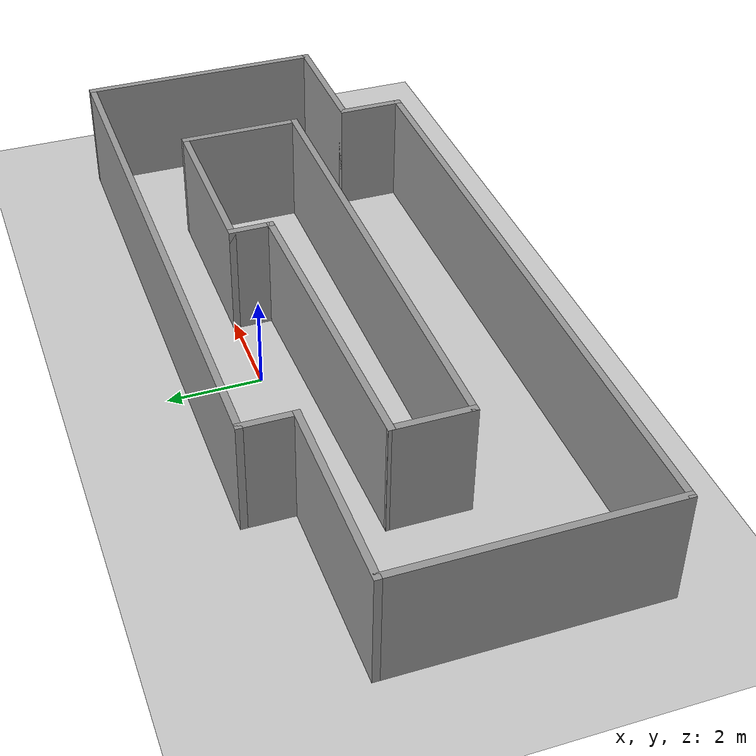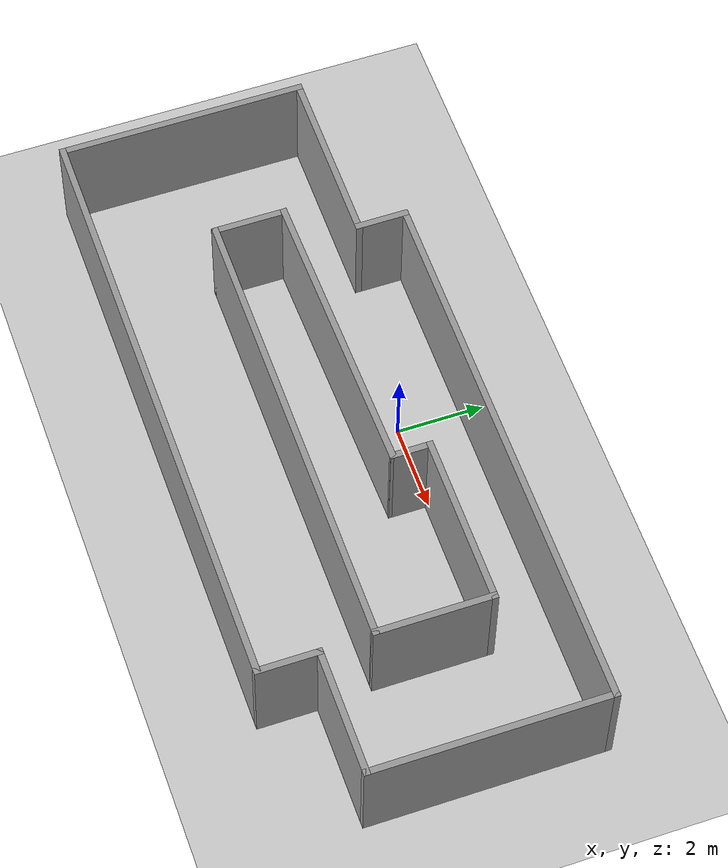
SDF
<sdf version="1.6">
 <world name="default">
  <light name="sun" type="directional">
   <pose>0 0 10 0 -0 0</pose>
   <diffuse>0.8 0.8 0.8 1</diffuse>
   <specular>0.2 0.2 0.2 1</specular>
   <attenuation>
    <range>1000</range>
    <constant>0.9</constant>
    <linear>0.01</linear>
    <quadratic>0.001</quadratic>
   </attenuation>
   <direction>-0.5 0.1 -0.9</direction>
  </light>
  <model name="ground_plane">
   <static>1</static>
   <link name="link">
    <collision name="collision">
     <geometry><plane><normal>0 0 1</normal><size>100 100</size></plane></geometry>
     <surface><friction><ode><mu>100</mu><mu2>50</mu2></ode></friction></surface>
    </collision>
    <visual name="visual">
     <cast_shadows>0</cast_shadows>
     <geometry><plane><normal>0 0 1</normal><size>100 100</size></plane></geometry>
     <material>
      <script><uri>file://media/materials/scripts/gazebo.material</uri><name>Gazebo/Grey</name></script>
     </material>
    </visual>
   </link>
  </model>
  <gravity>0 0 -9.8</gravity>
  <magnetic_field>6e-06 2.3e-05 -4.2e-05</magnetic_field>
  <atmosphere type="adiabatic"/>
  <physics name="default_physics" default="0" type="ode">
   <max_step_size>0.001</max_step_size>
   <real_time_factor>1</real_time_factor>
   <real_time_update_rate>1000</real_time_update_rate>
  </physics>
  <scene><ambient>0.4 0.4 0.4 1</ambient><background>0.7 0.7 0.7 1</background><shadows>1</shadows></scene>
  <audio><device>default</device></audio>
  <spherical_coordinates>
   <surface_model>EARTH_WGS84</surface_model>
   <latitude_deg>0</latitude_deg>
   <longitude_deg>0</longitude_deg>
   <elevation>0</elevation>
   <heading_deg>0</heading_deg>
  </spherical_coordinates>
  <model name="c9room">
   <pose>0.35 -1.8341 0 0 -0 0</pose>
   <link name="Wall_0">
    <collision name="Wall_0_Collision">
     <geometry><box><size>5.75 0.15 2.5</size></box></geometry>
     <pose>0 0 1.25 0 -0 0</pose>
    </collision>
    <visual name="Wall_0_Visual">
     <pose>0 0 1.25 0 -0 0</pose>
     <geometry><box><size>5.75 0.15 2.5</size></box></geometry>
     <material>
      <script><uri>file://media/materials/scripts/gazebo.material</uri><name>Gazebo/Grey</name></script>
      <ambient>1 1 1 1</ambient>
     </material>
     <meta><layer>0</layer></meta>
    </visual>
    <pose>-8.35 -0.55 0 0 -0 -1.5708</pose>
   </link>
   <link name="Wall_1">
    <collision name="Wall_1_Collision">
     <geometry><box><size>14 0.15 2.5</size></box></geometry>
     <pose>0 0 1.25 0 -0 0</pose>
    </collision>
    <visual name="Wall_1_Visual">
     <pose>0 0 1.25 0 -0 0</pose>
     <geometry><box><size>14 0.15 2.5</size></box></geometry>
     <material>
      <script><uri>file://media/materials/scripts/gazebo.material</uri><name>Gazebo/Grey</name></script>
      <ambient>1 1 1 1</ambient>
     </material>
     <meta><layer>0</layer></meta>
    </visual>
    <pose>-1.425 -3.35 0 0 -0 0</pose>
   </link>
   <link name="Wall_10">
    <collision name="Wall_10_Collision">
     <geometry><box><size>10.75 0.15 2.5</size></box></geometry>
     <pose>0 0 1.25 0 -0 0</pose>
    </collision>
    <visual name="Wall_10_Visual">
     <pose>0 0 1.25 0 -0 0</pose>
     <geometry><box><size>10.75 0.15 2.5</size></box></geometry>
     <material>
      <script><uri>file://media/materials/scripts/gazebo.material</uri><name>Gazebo/Grey</name></script>
      <ambient>1 1 1 1</ambient>
     </material>
     <meta><layer>0</layer></meta>
    </visual>
    <pose>0.14 -0.78 0 0 -0 0</pose>
   </link>
   <link name="Wall_11">
    <collision name="Wall_11_Collision">
     <geometry><box><size>2.75 0.15 2.5</size></box></geometry>
     <pose>0 0 1.25 0 -0 0</pose>
    </collision>
    <visual name="Wall_11_Visual">
     <pose>0 0 1.25 0 -0 0</pose>
     <geometry><box><size>2.75 0.15 2.5</size></box></geometry>
     <material>
      <script><uri>file://media/materials/scripts/gazebo.material</uri><name>Gazebo/Grey</name></script>
      <ambient>1 1 1 1</ambient>
     </material>
     <meta><layer>0</layer></meta>
    </visual>
    <pose>5.44 0.52 0 0 -0 1.5708</pose>
   </link>
   <link name="Wall_12">
    <collision name="Wall_12_Collision">
     <geometry><box><size>4 0.15 2.5</size></box></geometry>
     <pose>0 0 1.25 0 -0 0</pose>
    </collision>
    <visual name="Wall_12_Visual">
     <pose>0 0 1.25 0 -0 0</pose>
     <geometry><box><size>4 0.15 2.5</size></box></geometry>
     <material>
      <script><uri>file://media/materials/scripts/gazebo.material</uri><name>Gazebo/Grey</name></script>
      <ambient>1 1 1 1</ambient>
     </material>
     <meta><layer>0</layer></meta>
    </visual>
    <pose>3.515 1.82 0 0 -0 3.14159</pose>
   </link>
   <link name="Wall_13">
    <collision name="Wall_13_Collision">
     <geometry><box><size>1 0.15 2.5</size></box></geometry>
     <pose>0 0 1.25 0 -0 0</pose>
    </collision>
    <visual name="Wall_13_Visual">
     <pose>0 0 1.25 0 -0 0</pose>
     <geometry><box><size>1 0.15 2.5</size></box></geometry>
     <material>
      <script><uri>file://media/materials/scripts/gazebo.material</uri><name>Gazebo/Grey</name></script>
      <ambient>1 1 1 1</ambient>
     </material>
     <meta><layer>0</layer></meta>
    </visual>
    <pose>1.59 1.395 0 0 -0 -1.5708</pose>
   </link>
   <link name="Wall_14">
    <collision name="Wall_14_Collision">
     <geometry><box><size>6.90167 0.15 2.5</size></box></geometry>
     <pose>0 0 1.25 0 -0 0</pose>
    </collision>
    <visual name="Wall_14_Visual">
     <pose>0 0 1.25 0 -0 0</pose>
     <geometry><box><size>6.90167 0.15 2.5</size></box></geometry>
     <material>
      <script><uri>file://media/materials/scripts/gazebo.material</uri><name>Gazebo/Grey</name></script>
      <ambient>1 1 1 1</ambient>
     </material>
     <meta><layer>0</layer></meta>
    </visual>
    <pose>-1.785 0.895 0 0 -0 -3.11937</pose>
   </link>
   <link name="Wall_2">
    <collision name="Wall_2_Collision">
     <geometry><box><size>1.5 0.15 2.5</size></box></geometry>
     <pose>0 0 1.25 0 -0 0</pose>
    </collision>
    <visual name="Wall_2_Visual">
     <pose>0 0 1.25 0 -0 0</pose>
     <geometry><box><size>1.5 0.15 2.5</size></box></geometry>
     <material>
      <script><uri>file://media/materials/scripts/gazebo.material</uri><name>Gazebo/Grey</name></script>
      <ambient>1 1 1 1</ambient>
     </material>
     <meta><layer>0</layer></meta>
    </visual>
    <pose>5.5 -2.675 0 0 -0 1.5708</pose>
   </link>
   <link name="Wall_3">
    <collision name="Wall_3_Collision">
     <geometry><box><size>3 0.15 2.5</size></box></geometry>
     <pose>0 0 1.25 0 -0 0</pose>
    </collision>
    <visual name="Wall_3_Visual">
     <pose>0 0 1.25 0 -0 0</pose>
     <geometry><box><size>3 0.15 2.5</size></box></geometry>
     <material>
      <script><uri>file://media/materials/scripts/gazebo.material</uri><name>Gazebo/Grey</name></script>
      <ambient>1 1 1 1</ambient>
     </material>
     <meta><layer>0</layer></meta>
    </visual>
    <pose>6.925 -2 0 0 -0 0</pose>
   </link>
   <link name="Wall_4">
    <collision name="Wall_4_Collision">
     <geometry><box><size>5.5 0.15 2.5</size></box></geometry>
     <pose>0 0 1.25 0 -0 0</pose>
    </collision>
    <visual name="Wall_4_Visual">
     <pose>0 0 1.25 0 -0 0</pose>
     <geometry><box><size>5.5 0.15 2.5</size></box></geometry>
     <material>
      <script><uri>file://media/materials/scripts/gazebo.material</uri><name>Gazebo/Grey</name></script>
      <ambient>1 1 1 1</ambient>
     </material>
     <meta><layer>0</layer></meta>
    </visual>
    <pose>8.35 0.675 0 0 -0 1.5708</pose>
   </link>
   <link name="Wall_5">
    <collision name="Wall_5_Collision">
     <geometry><box><size>12.75 0.15 2.5</size></box></geometry>
     <pose>0 0 1.25 0 -0 0</pose>
    </collision>
    <visual name="Wall_5_Visual">
     <pose>0 0 1.25 0 -0 0</pose>
     <geometry><box><size>12.75 0.15 2.5</size></box></geometry>
     <material>
      <script><uri>file://media/materials/scripts/gazebo.material</uri><name>Gazebo/Grey</name></script>
      <ambient>1 1 1 1</ambient>
     </material>
     <meta><layer>0</layer></meta>
    </visual>
    <pose>2.05 3.35 0 0 -0 3.14159</pose>
   </link>
   <link name="Wall_6">
    <collision name="Wall_6_Collision">
     <geometry><box><size>1.25 0.15 2.5</size></box></geometry>
     <pose>0 0 1.25 0 -0 0</pose>
    </collision>
    <visual name="Wall_6_Visual">
     <pose>0 0 1.25 0 -0 0</pose>
     <geometry><box><size>1.25 0.15 2.5</size></box></geometry>
     <material>
      <script><uri>file://media/materials/scripts/gazebo.material</uri><name>Gazebo/Grey</name></script>
      <ambient>1 1 1 1</ambient>
     </material>
     <meta><layer>0</layer></meta>
    </visual>
    <pose>-4.25 2.8 0 0 -0 -1.5708</pose>
   </link>
   <link name="Wall_7">
    <collision name="Wall_7_Collision">
     <geometry><box><size>4.25 0.15 2.5</size></box></geometry>
     <pose>0 0 1.25 0 -0 0</pose>
    </collision>
    <visual name="Wall_7_Visual">
     <pose>0 0 1.25 0 -0 0</pose>
     <geometry><box><size>4.25 0.15 2.5</size></box></geometry>
     <material>
      <script><uri>file://media/materials/scripts/gazebo.material</uri><name>Gazebo/Grey</name></script>
      <ambient>1 1 1 1</ambient>
     </material>
     <meta><layer>0</layer></meta>
    </visual>
    <pose>-6.3 2.25 0 0 -0 3.14159</pose>
   </link>
   <link name="Wall_9">
    <collision name="Wall_9_Collision">
     <geometry><box><size>1.75 0.15 2.5</size></box></geometry>
     <pose>0 0 1.25 0 -0 0</pose>
    </collision>
    <visual name="Wall_9_Visual">
     <pose>0 0 1.25 0 -0 0</pose>
     <geometry><box><size>1.75 0.15 2.5</size></box></geometry>
     <material>
      <script><uri>file://media/materials/scripts/gazebo.material</uri><name>Gazebo/Grey</name></script>
      <ambient>1 1 1 1</ambient>
     </material>
     <meta><layer>0</layer></meta>
    </visual>
    <pose>-5.16 0.02 0 0 -0 -1.5708</pose>
   </link>
   <static>1</static>
  </model>
 </world>
</sdf>
